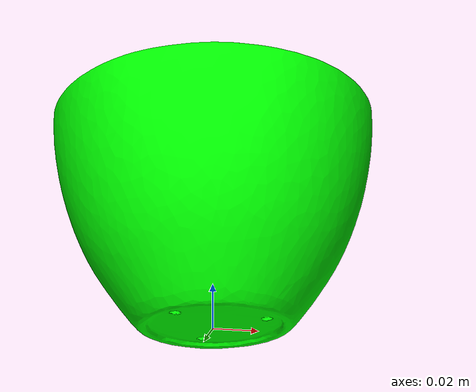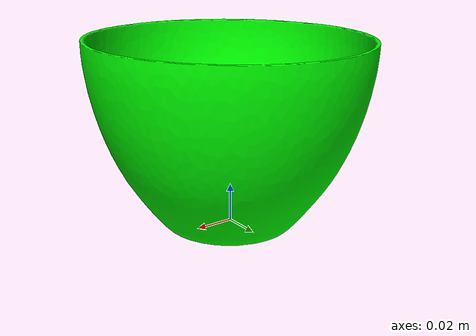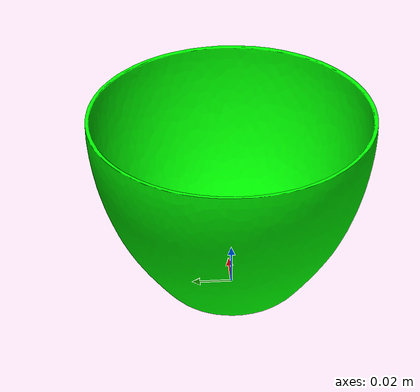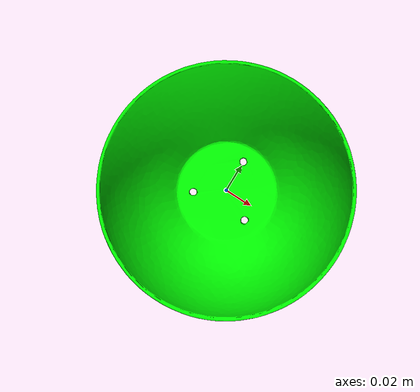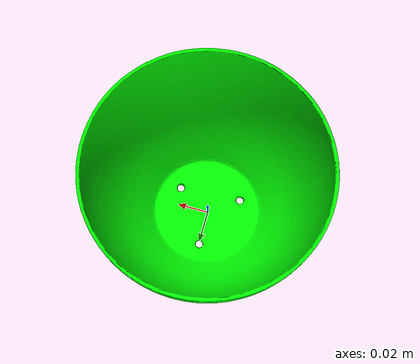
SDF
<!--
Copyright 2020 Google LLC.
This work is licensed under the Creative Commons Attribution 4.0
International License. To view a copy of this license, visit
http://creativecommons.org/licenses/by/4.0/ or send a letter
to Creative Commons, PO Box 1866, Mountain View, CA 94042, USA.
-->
<?xml version="1.0" ?>
<sdf version="1.6">
  <model name="Ecoforms_Plant_Bowl_Turquoise_7">
    <link name="link_0">
      <visual name="visual">
        <geometry>
          <mesh>
            <uri>model://green_bowl/meshes/model.obj</uri>
            <scale> 0.8 0.8 0.8 </scale>
          </mesh>
        </geometry>
         <material> <!-- Wheel material -->
          <ambient>0 1 0 1</ambient>
        </material> <!-- End wheel material -->
      </visual>
      <collision name="collision_0">
        <geometry>
          <mesh>
            <uri>model://green_bowl/meshes/model.obj</uri>
          </mesh>
        </geometry>
      </collision>
    </link>
  </model>
</sdf>
